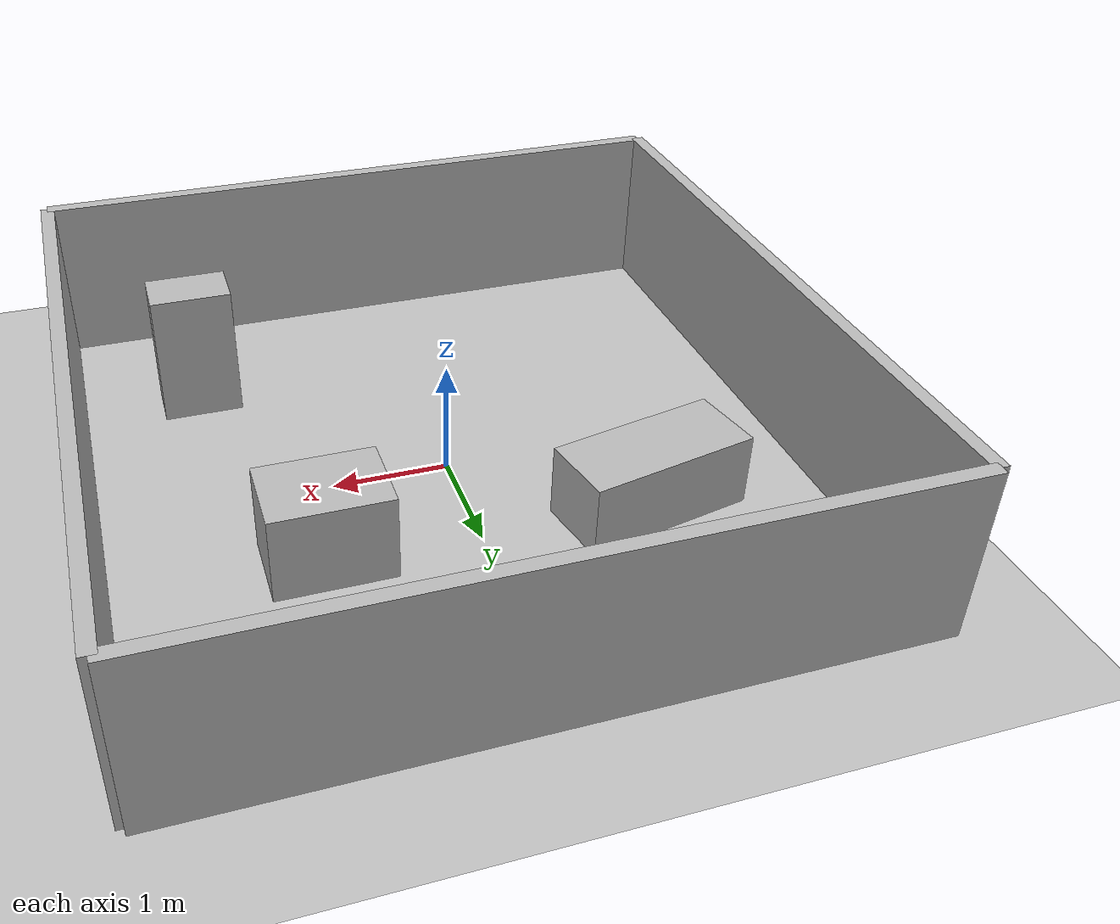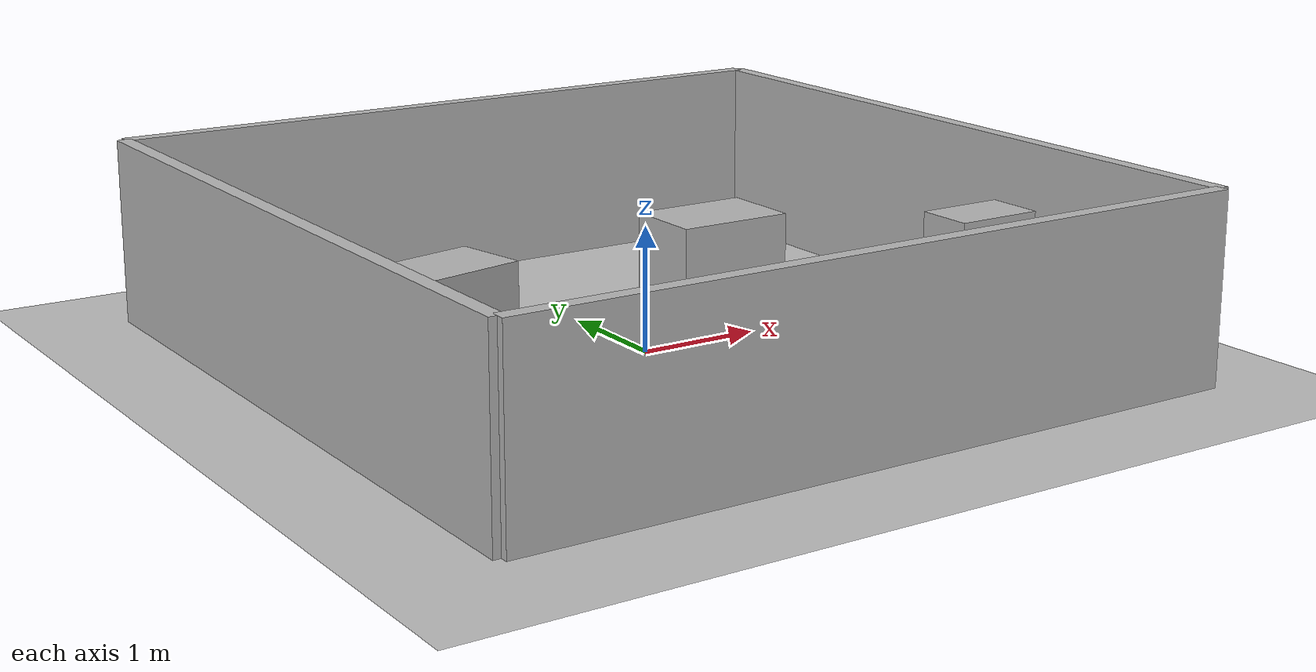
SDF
<?xml version="1.0"?>
<sdf version="1.6">
  <world name="home_room">
    <!-- Native Gazebo Classic 3D overview, not a 2D occupancy-grid overlay. -->
    <gui fullscreen="0">
      <camera name="user_camera">
        <pose>-2.0 -2.0 4.2 0 0.94 0.79</pose>
        <view_controller>orbit</view_controller>
      </camera>
    </gui>
    <plugin name="gazebo_ros_state" filename="libgazebo_ros_state.so">
      <ros>
        <namespace>/gazebo</namespace>
      </ros>
      <update_rate>30.0</update_rate>
    </plugin>
    <gravity>0 0 -9.81</gravity>
    <physics type="ode">
      <real_time_update_rate>1000</real_time_update_rate>
      <max_step_size>0.001</max_step_size>
    </physics>

    <light name="sun" type="directional">
      <cast_shadows>true</cast_shadows>
      <pose>0 0 8 0 0 0</pose>
      <diffuse>0.8 0.8 0.8 1</diffuse>
      <specular>0.2 0.2 0.2 1</specular>
      <attenuation>
        <range>1000</range>
        <constant>0.9</constant>
        <linear>0.01</linear>
        <quadratic>0.001</quadratic>
      </attenuation>
      <direction>-0.5 0.1 -0.9</direction>
    </light>

    <model name="ground_plane">
      <static>true</static>
      <link name="link">
        <collision name="collision">
          <geometry>
            <plane>
              <normal>0 0 1</normal>
              <size>20 20</size>
            </plane>
          </geometry>
        </collision>
        <visual name="visual">
          <geometry>
            <plane>
              <normal>0 0 1</normal>
              <size>20 20</size>
            </plane>
          </geometry>
          <material>
            <ambient>0.75 0.75 0.75 1</ambient>
            <diffuse>0.75 0.75 0.75 1</diffuse>
          </material>
        </visual>
      </link>
    </model>

    <model name="north_wall">
      <static>true</static>
      <pose>0 3 0.75 0 0 0</pose>
      <link name="link">
        <collision name="collision"><geometry><box><size>6 0.12 1.5</size></box></geometry></collision>
        <visual name="visual"><geometry><box><size>6 0.12 1.5</size></box></geometry></visual>
      </link>
    </model>

    <model name="south_wall">
      <static>true</static>
      <pose>0 -3 0.75 0 0 0</pose>
      <link name="link">
        <collision name="collision"><geometry><box><size>6 0.12 1.5</size></box></geometry></collision>
        <visual name="visual"><geometry><box><size>6 0.12 1.5</size></box></geometry></visual>
      </link>
    </model>

    <model name="east_wall">
      <static>true</static>
      <pose>3 0 0.75 0 0 0</pose>
      <link name="link">
        <collision name="collision"><geometry><box><size>0.12 6 1.5</size></box></geometry></collision>
        <visual name="visual"><geometry><box><size>0.12 6 1.5</size></box></geometry></visual>
      </link>
    </model>

    <model name="west_wall">
      <static>true</static>
      <pose>-3 0 0.75 0 0 0</pose>
      <link name="link">
        <collision name="collision"><geometry><box><size>0.12 6 1.5</size></box></geometry></collision>
        <visual name="visual"><geometry><box><size>0.12 6 1.5</size></box></geometry></visual>
      </link>
    </model>

    <model name="sofa_block">
      <static>true</static>
      <pose>-1.45 1.0 0.32 0 0 0.2</pose>
      <link name="link">
        <collision name="collision"><geometry><box><size>1.5 0.65 0.64</size></box></geometry></collision>
        <visual name="visual"><geometry><box><size>1.5 0.65 0.64</size></box></geometry></visual>
      </link>
    </model>

    <model name="table_block">
      <static>true</static>
      <pose>1.25 0.9 0.38 0 0 0</pose>
      <link name="link">
        <collision name="collision"><geometry><box><size>1.0 0.7 0.76</size></box></geometry></collision>
        <visual name="visual"><geometry><box><size>1.0 0.7 0.76</size></box></geometry></visual>
      </link>
    </model>

    <model name="cabinet_block">
      <static>true</static>
      <pose>1.9 -1.65 0.6 0 0 0</pose>
      <link name="link">
        <collision name="collision"><geometry><box><size>0.7 0.45 1.2</size></box></geometry></collision>
        <visual name="visual"><geometry><box><size>0.7 0.45 1.2</size></box></geometry></visual>
      </link>
    </model>
  </world>
</sdf>
